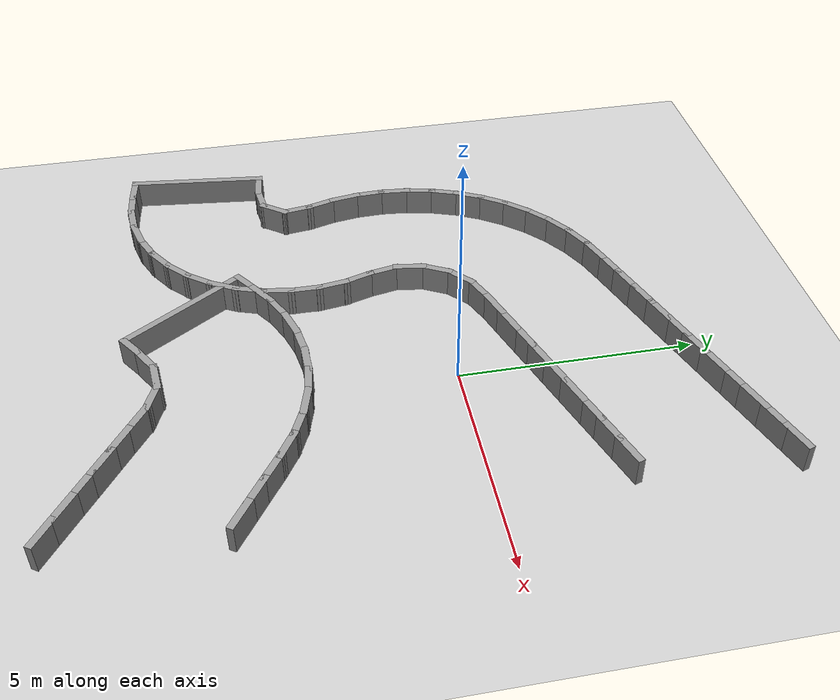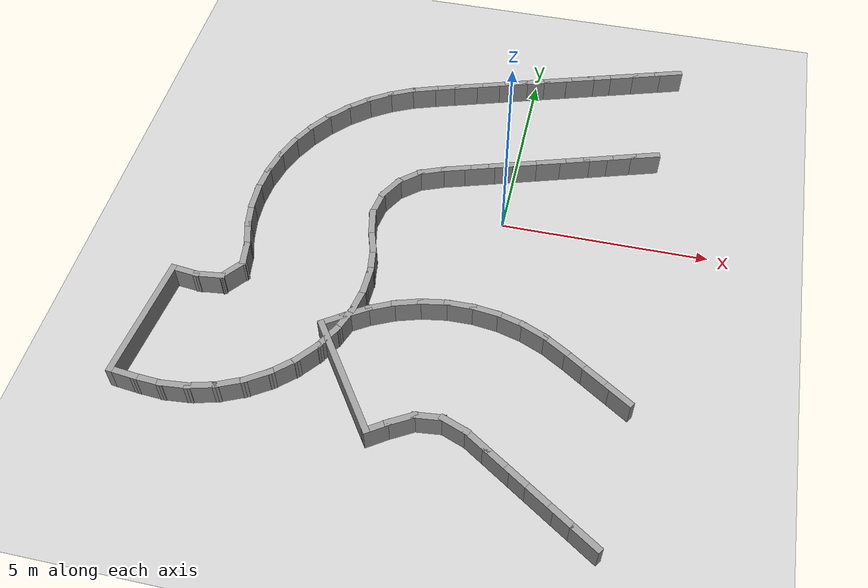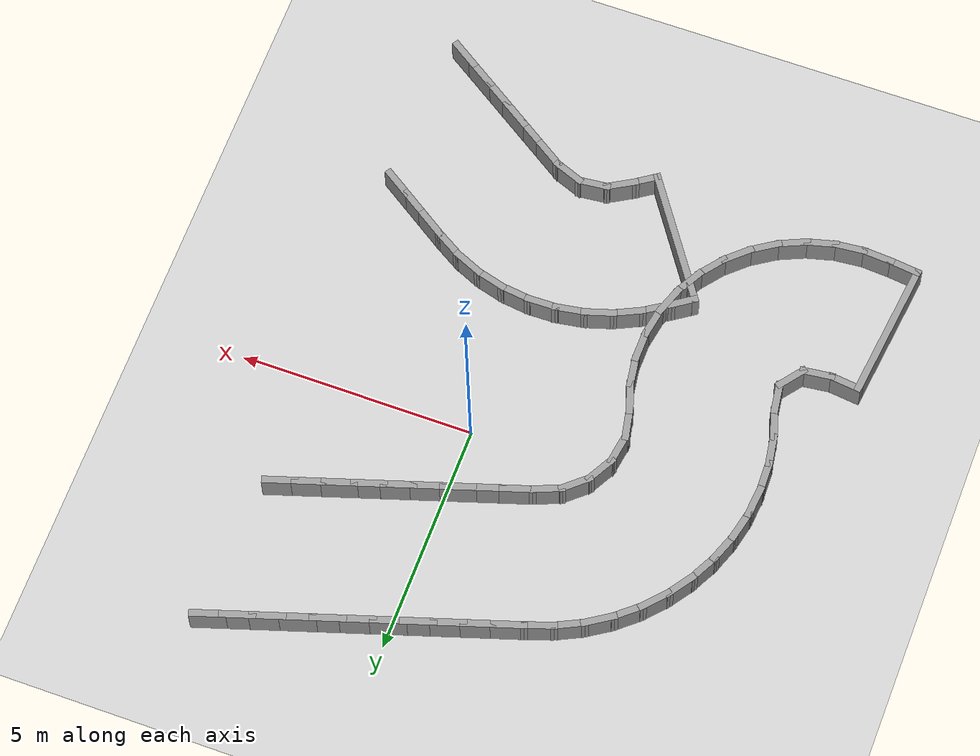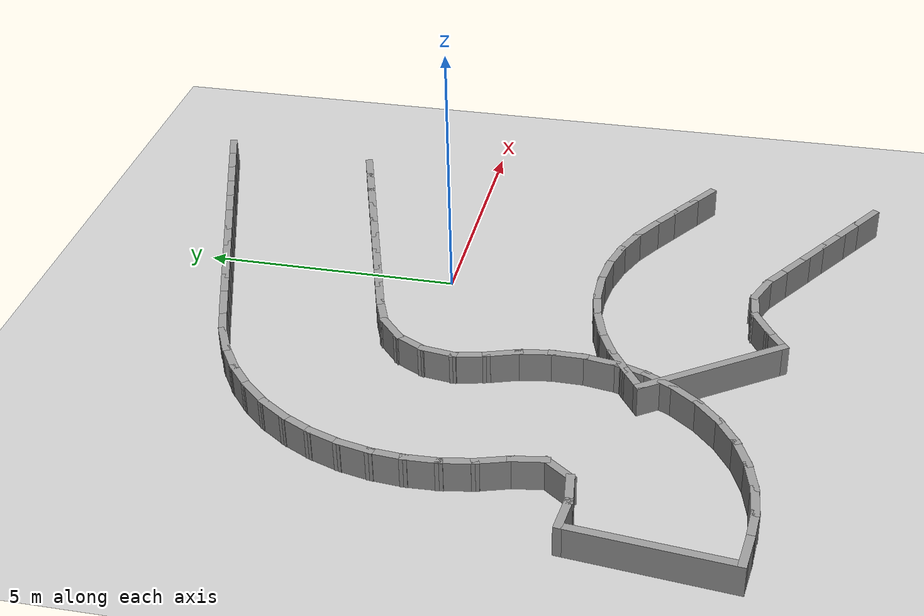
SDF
<sdf version="1.7">
 <world name="default">
  <model name="ground_plane">
   <static>1</static>
   <link name="link">
    <collision name="collision">
     <geometry><plane><normal>0 0 1</normal><size>100 100</size></plane></geometry>
     <surface><friction><ode><mu>100</mu><mu2>50</mu2></ode></friction></surface>
    </collision>
    <visual name="visual">
     <cast_shadows>0</cast_shadows>
     <geometry><plane><normal>0 0 1</normal><size>100 100</size></plane></geometry>
     <material>
      <script><uri>file://media/materials/scripts/gazebo.material</uri><name>Gazebo/Grey</name></script>
     </material>
    </visual>
   </link>
  </model>
  <model name="rand_turn_12">
   <link name="Wall_0">
    <collision name="Wall_0_Collision">
     <geometry><box><size>0.7500 0.1500 0.6000</size></box></geometry>
     <pose>0 0 0.3000 0 -0 0</pose>
    </collision>
    <visual name="Wall_0_Visual">
     <pose>0 0 0.3000 0 -0 0</pose>
     <geometry><box><size>0.7500 0.1500 0.6000</size></box></geometry>
     <material>
      <script><uri>file://media/materials/scripts/gazebo.material</uri><name>Gazebo/Grey</name></script>
      <ambient>1 1 1 1</ambient>
     </material>
    </visual>
    <pose>-6.8772 -3.4257 0 0 -0 -0.11106</pose>
   </link>
   <link name="Wall_1">
    <collision name="Wall_1_Collision">
     <geometry><box><size>0.7374 0.1500 0.6000</size></box></geometry>
     <pose>0 0 0.3000 0 -0 0</pose>
    </collision>
    <visual name="Wall_1_Visual">
     <pose>0 0 0.3000 0 -0 0</pose>
     <geometry><box><size>0.7374 0.1500 0.6000</size></box></geometry>
     <material>
      <script><uri>file://media/materials/scripts/gazebo.material</uri><name>Gazebo/Grey</name></script>
      <ambient>1 1 1 1</ambient>
     </material>
    </visual>
    <pose>-6.2874 -3.4238 0 0 -0 0.11996</pose>
   </link>
   <link name="Wall_2">
    <collision name="Wall_2_Collision">
     <geometry><box><size>0.7330 0.1500 0.6000</size></box></geometry>
     <pose>0 0 0.3000 0 -0 0</pose>
    </collision>
    <visual name="Wall_2_Visual">
     <pose>0 0 0.3000 0 -0 0</pose>
     <geometry><box><size>0.7330 0.1500 0.6000</size></box></geometry>
     <material>
      <script><uri>file://media/materials/scripts/gazebo.material</uri><name>Gazebo/Grey</name></script>
      <ambient>1 1 1 1</ambient>
     </material>
    </visual>
    <pose>-5.8196 -3.1565 0 0 -0 0.92140</pose>
   </link>
   <link name="Wall_3">
    <collision name="Wall_3_Collision">
     <geometry><box><size>0.7377 0.1500 0.6000</size></box></geometry>
     <pose>0 0 0.3000 0 -0 0</pose>
    </collision>
    <visual name="Wall_3_Visual">
     <pose>0 0 0.3000 0 -0 0</pose>
     <geometry><box><size>0.7377 0.1500 0.6000</size></box></geometry>
     <material>
      <script><uri>file://media/materials/scripts/gazebo.material</uri><name>Gazebo/Grey</name></script>
      <ambient>1 1 1 1</ambient>
     </material>
    </visual>
    <pose>-5.6868 -2.6337 0 0 -0 1.71950</pose>
   </link>
   <link name="Wall_4">
    <collision name="Wall_4_Collision">
     <geometry><box><size>0.7496 0.1500 0.6000</size></box></geometry>
     <pose>0 0 0.3000 0 -0 0</pose>
    </collision>
    <visual name="Wall_4_Visual">
     <pose>0 0 0.3000 0 -0 0</pose>
     <geometry><box><size>0.7496 0.1500 0.6000</size></box></geometry>
     <material>
      <script><uri>file://media/materials/scripts/gazebo.material</uri><name>Gazebo/Grey</name></script>
      <ambient>1 1 1 1</ambient>
     </material>
    </visual>
    <pose>-5.8177 -2.0563 0 0 -0 1.86625</pose>
   </link>
   <link name="Wall_5">
    <collision name="Wall_5_Collision">
     <geometry><box><size>0.7496 0.1500 0.6000</size></box></geometry>
     <pose>0 0 0.3000 0 -0 0</pose>
    </collision>
    <visual name="Wall_5_Visual">
     <pose>0 0 0.3000 0 -0 0</pose>
     <geometry><box><size>0.7496 0.1500 0.6000</size></box></geometry>
     <material>
      <script><uri>file://media/materials/scripts/gazebo.material</uri><name>Gazebo/Grey</name></script>
      <ambient>1 1 1 1</ambient>
     </material>
    </visual>
    <pose>-5.9548 -1.4739 0 0 -0 1.73781</pose>
   </link>
   <link name="Wall_6">
    <collision name="Wall_6_Collision">
     <geometry><box><size>0.7495 0.1500 0.6000</size></box></geometry>
     <pose>0 0 0.3000 0 -0 0</pose>
    </collision>
    <visual name="Wall_6_Visual">
     <pose>0 0 0.3000 0 -0 0</pose>
     <geometry><box><size>0.7495 0.1500 0.6000</size></box></geometry>
     <material>
      <script><uri>file://media/materials/scripts/gazebo.material</uri><name>Gazebo/Grey</name></script>
      <ambient>1 1 1 1</ambient>
     </material>
    </visual>
    <pose>-6.0162 -0.8787 0 0 -0 1.60937</pose>
   </link>
   <link name="Wall_7">
    <collision name="Wall_7_Collision">
     <geometry><box><size>0.7495 0.1500 0.6000</size></box></geometry>
     <pose>0 0 0.3000 0 -0 0</pose>
    </collision>
    <visual name="Wall_7_Visual">
     <pose>0 0 0.3000 0 -0 0</pose>
     <geometry><box><size>0.7495 0.1500 0.6000</size></box></geometry>
     <material>
      <script><uri>file://media/materials/scripts/gazebo.material</uri><name>Gazebo/Grey</name></script>
      <ambient>1 1 1 1</ambient>
     </material>
    </visual>
    <pose>-6.0008 -0.2806 0 0 -0 1.48094</pose>
   </link>
   <link name="Wall_8">
    <collision name="Wall_8_Collision">
     <geometry><box><size>0.7495 0.1500 0.6000</size></box></geometry>
     <pose>0 0 0.3000 0 -0 0</pose>
    </collision>
    <visual name="Wall_8_Visual">
     <pose>0 0 0.3000 0 -0 0</pose>
     <geometry><box><size>0.7495 0.1500 0.6000</size></box></geometry>
     <material>
      <script><uri>file://media/materials/scripts/gazebo.material</uri><name>Gazebo/Grey</name></script>
      <ambient>1 1 1 1</ambient>
     </material>
    </visual>
    <pose>-5.9090 0.3106 0 0 -0 1.35250</pose>
   </link>
   <link name="Wall_9">
    <collision name="Wall_9_Collision">
     <geometry><box><size>0.7496 0.1500 0.6000</size></box></geometry>
     <pose>0 0 0.3000 0 -0 0</pose>
    </collision>
    <visual name="Wall_9_Visual">
     <pose>0 0 0.3000 0 -0 0</pose>
     <geometry><box><size>0.7496 0.1500 0.6000</size></box></geometry>
     <material>
      <script><uri>file://media/materials/scripts/gazebo.material</uri><name>Gazebo/Grey</name></script>
      <ambient>1 1 1 1</ambient>
     </material>
    </visual>
    <pose>-5.7422 0.8852 0 0 -0 1.22406</pose>
   </link>
   <link name="Wall_10">
    <collision name="Wall_10_Collision">
     <geometry><box><size>0.7496 0.1500 0.6000</size></box></geometry>
     <pose>0 0 0.3000 0 -0 0</pose>
    </collision>
    <visual name="Wall_10_Visual">
     <pose>0 0 0.3000 0 -0 0</pose>
     <geometry><box><size>0.7496 0.1500 0.6000</size></box></geometry>
     <material>
      <script><uri>file://media/materials/scripts/gazebo.material</uri><name>Gazebo/Grey</name></script>
      <ambient>1 1 1 1</ambient>
     </material>
    </visual>
    <pose>-5.5032 1.4337 0 0 -0 1.09562</pose>
   </link>
   <link name="Wall_11">
    <collision name="Wall_11_Collision">
     <geometry><box><size>0.7496 0.1500 0.6000</size></box></geometry>
     <pose>0 0 0.3000 0 -0 0</pose>
    </collision>
    <visual name="Wall_11_Visual">
     <pose>0 0 0.3000 0 -0 0</pose>
     <geometry><box><size>0.7496 0.1500 0.6000</size></box></geometry>
     <material>
      <script><uri>file://media/materials/scripts/gazebo.material</uri><name>Gazebo/Grey</name></script>
      <ambient>1 1 1 1</ambient>
     </material>
    </visual>
    <pose>-5.1959 1.9471 0 0 -0 0.96718</pose>
   </link>
   <link name="Wall_12">
    <collision name="Wall_12_Collision">
     <geometry><box><size>0.7496 0.1500 0.6000</size></box></geometry>
     <pose>0 0 0.3000 0 -0 0</pose>
    </collision>
    <visual name="Wall_12_Visual">
     <pose>0 0 0.3000 0 -0 0</pose>
     <geometry><box><size>0.7496 0.1500 0.6000</size></box></geometry>
     <material>
      <script><uri>file://media/materials/scripts/gazebo.material</uri><name>Gazebo/Grey</name></script>
      <ambient>1 1 1 1</ambient>
     </material>
    </visual>
    <pose>-4.8252 2.4168 0 0 -0 0.83822</pose>
   </link>
   <link name="Wall_13">
    <collision name="Wall_13_Collision">
     <geometry><box><size>0.7496 0.1500 0.6000</size></box></geometry>
     <pose>0 0 0.3000 0 -0 0</pose>
    </collision>
    <visual name="Wall_13_Visual">
     <pose>0 0 0.3000 0 -0 0</pose>
     <geometry><box><size>0.7496 0.1500 0.6000</size></box></geometry>
     <material>
      <script><uri>file://media/materials/scripts/gazebo.material</uri><name>Gazebo/Grey</name></script>
      <ambient>1 1 1 1</ambient>
     </material>
    </visual>
    <pose>-4.3973 2.8350 0 0 -0 0.70952</pose>
   </link>
   <link name="Wall_14">
    <collision name="Wall_14_Collision">
     <geometry><box><size>0.7496 0.1500 0.6000</size></box></geometry>
     <pose>0 0 0.3000 0 -0 0</pose>
    </collision>
    <visual name="Wall_14_Visual">
     <pose>0 0 0.3000 0 -0 0</pose>
     <geometry><box><size>0.7496 0.1500 0.6000</size></box></geometry>
     <material>
      <script><uri>file://media/materials/scripts/gazebo.material</uri><name>Gazebo/Grey</name></script>
      <ambient>1 1 1 1</ambient>
     </material>
    </visual>
    <pose>-3.9192 3.1948 0 0 -0 0.58108</pose>
   </link>
   <link name="Wall_15">
    <collision name="Wall_15_Collision">
     <geometry><box><size>0.7495 0.1500 0.6000</size></box></geometry>
     <pose>0 0 0.3000 0 -0 0</pose>
    </collision>
    <visual name="Wall_15_Visual">
     <pose>0 0 0.3000 0 -0 0</pose>
     <geometry><box><size>0.7495 0.1500 0.6000</size></box></geometry>
     <material>
      <script><uri>file://media/materials/scripts/gazebo.material</uri><name>Gazebo/Grey</name></script>
      <ambient>1 1 1 1</ambient>
     </material>
    </visual>
    <pose>-3.3991 3.4905 0 0 -0 0.45264</pose>
   </link>
   <link name="Wall_16">
    <collision name="Wall_16_Collision">
     <geometry><box><size>0.7498 0.1500 0.6000</size></box></geometry>
     <pose>0 0 0.3000 0 -0 0</pose>
    </collision>
    <visual name="Wall_16_Visual">
     <pose>0 0 0.3000 0 -0 0</pose>
     <geometry><box><size>0.7498 0.1500 0.6000</size></box></geometry>
     <material>
      <script><uri>file://media/materials/scripts/gazebo.material</uri><name>Gazebo/Grey</name></script>
      <ambient>1 1 1 1</ambient>
     </material>
    </visual>
    <pose>-2.8460 3.7194 0 0 -0 0.33208</pose>
   </link>
   <link name="Wall_17">
    <collision name="Wall_17_Collision">
     <geometry><box><size>0.7500 0.1500 0.6000</size></box></geometry>
     <pose>0 0 0.3000 0 -0 0</pose>
    </collision>
    <visual name="Wall_17_Visual">
     <pose>0 0 0.3000 0 -0 0</pose>
     <geometry><box><size>0.7500 0.1500 0.6000</size></box></geometry>
     <material>
      <script><uri>file://media/materials/scripts/gazebo.material</uri><name>Gazebo/Grey</name></script>
      <ambient>1 1 1 1</ambient>
     </material>
    </visual>
    <pose>-2.2767 3.9083 0 0 -0 0.30859</pose>
   </link>
   <link name="Wall_18">
    <collision name="Wall_18_Collision">
     <geometry><box><size>0.7500 0.1500 0.6000</size></box></geometry>
     <pose>0 0 0.3000 0 -0 0</pose>
    </collision>
    <visual name="Wall_18_Visual">
     <pose>0 0 0.3000 0 -0 0</pose>
     <geometry><box><size>0.7500 0.1500 0.6000</size></box></geometry>
     <material>
      <script><uri>file://media/materials/scripts/gazebo.material</uri><name>Gazebo/Grey</name></script>
      <ambient>1 1 1 1</ambient>
     </material>
    </visual>
    <pose>-1.7050 4.0905 0 0 -0 0.30859</pose>
   </link>
   <link name="Wall_19">
    <collision name="Wall_19_Collision">
     <geometry><box><size>0.7500 0.1500 0.6000</size></box></geometry>
     <pose>0 0 0.3000 0 -0 0</pose>
    </collision>
    <visual name="Wall_19_Visual">
     <pose>0 0 0.3000 0 -0 0</pose>
     <geometry><box><size>0.7500 0.1500 0.6000</size></box></geometry>
     <material>
      <script><uri>file://media/materials/scripts/gazebo.material</uri><name>Gazebo/Grey</name></script>
      <ambient>1 1 1 1</ambient>
     </material>
    </visual>
    <pose>-1.1334 4.2727 0 0 -0 0.30859</pose>
   </link>
   <link name="Wall_20">
    <collision name="Wall_20_Collision">
     <geometry><box><size>0.7500 0.1500 0.6000</size></box></geometry>
     <pose>0 0 0.3000 0 -0 0</pose>
    </collision>
    <visual name="Wall_20_Visual">
     <pose>0 0 0.3000 0 -0 0</pose>
     <geometry><box><size>0.7500 0.1500 0.6000</size></box></geometry>
     <material>
      <script><uri>file://media/materials/scripts/gazebo.material</uri><name>Gazebo/Grey</name></script>
      <ambient>1 1 1 1</ambient>
     </material>
    </visual>
    <pose>-0.5617 4.4549 0 0 -0 0.30859</pose>
   </link>
   <link name="Wall_21">
    <collision name="Wall_21_Collision">
     <geometry><box><size>0.7500 0.1500 0.6000</size></box></geometry>
     <pose>0 0 0.3000 0 -0 0</pose>
    </collision>
    <visual name="Wall_21_Visual">
     <pose>0 0 0.3000 0 -0 0</pose>
     <geometry><box><size>0.7500 0.1500 0.6000</size></box></geometry>
     <material>
      <script><uri>file://media/materials/scripts/gazebo.material</uri><name>Gazebo/Grey</name></script>
      <ambient>1 1 1 1</ambient>
     </material>
    </visual>
    <pose>0.0099 4.6372 0 0 -0 0.30859</pose>
   </link>
   <link name="Wall_22">
    <collision name="Wall_22_Collision">
     <geometry><box><size>0.7500 0.1500 0.6000</size></box></geometry>
     <pose>0 0 0.3000 0 -0 0</pose>
    </collision>
    <visual name="Wall_22_Visual">
     <pose>0 0 0.3000 0 -0 0</pose>
     <geometry><box><size>0.7500 0.1500 0.6000</size></box></geometry>
     <material>
      <script><uri>file://media/materials/scripts/gazebo.material</uri><name>Gazebo/Grey</name></script>
      <ambient>1 1 1 1</ambient>
     </material>
    </visual>
    <pose>0.5816 4.8194 0 0 -0 0.30859</pose>
   </link>
   <link name="Wall_23">
    <collision name="Wall_23_Collision">
     <geometry><box><size>0.7500 0.1500 0.6000</size></box></geometry>
     <pose>0 0 0.3000 0 -0 0</pose>
    </collision>
    <visual name="Wall_23_Visual">
     <pose>0 0 0.3000 0 -0 0</pose>
     <geometry><box><size>0.7500 0.1500 0.6000</size></box></geometry>
     <material>
      <script><uri>file://media/materials/scripts/gazebo.material</uri><name>Gazebo/Grey</name></script>
      <ambient>1 1 1 1</ambient>
     </material>
    </visual>
    <pose>1.1533 5.0016 0 0 -0 0.30859</pose>
   </link>
   <link name="Wall_24">
    <collision name="Wall_24_Collision">
     <geometry><box><size>0.7500 0.1500 0.6000</size></box></geometry>
     <pose>0 0 0.3000 0 -0 0</pose>
    </collision>
    <visual name="Wall_24_Visual">
     <pose>0 0 0.3000 0 -0 0</pose>
     <geometry><box><size>0.7500 0.1500 0.6000</size></box></geometry>
     <material>
      <script><uri>file://media/materials/scripts/gazebo.material</uri><name>Gazebo/Grey</name></script>
      <ambient>1 1 1 1</ambient>
     </material>
    </visual>
    <pose>1.7249 5.1839 0 0 -0 0.30859</pose>
   </link>
   <link name="Wall_25">
    <collision name="Wall_25_Collision">
     <geometry><box><size>0.7500 0.1500 0.6000</size></box></geometry>
     <pose>0 0 0.3000 0 -0 0</pose>
    </collision>
    <visual name="Wall_25_Visual">
     <pose>0 0 0.3000 0 -0 0</pose>
     <geometry><box><size>0.7500 0.1500 0.6000</size></box></geometry>
     <material>
      <script><uri>file://media/materials/scripts/gazebo.material</uri><name>Gazebo/Grey</name></script>
      <ambient>1 1 1 1</ambient>
     </material>
    </visual>
    <pose>2.2966 5.3661 0 0 -0 0.30859</pose>
   </link>
   <link name="Wall_26">
    <collision name="Wall_26_Collision">
     <geometry><box><size>0.7500 0.1500 0.6000</size></box></geometry>
     <pose>0 0 0.3000 0 -0 0</pose>
    </collision>
    <visual name="Wall_26_Visual">
     <pose>0 0 0.3000 0 -0 0</pose>
     <geometry><box><size>0.7500 0.1500 0.6000</size></box></geometry>
     <material>
      <script><uri>file://media/materials/scripts/gazebo.material</uri><name>Gazebo/Grey</name></script>
      <ambient>1 1 1 1</ambient>
     </material>
    </visual>
    <pose>2.8682 5.5483 0 0 -0 0.30859</pose>
   </link>
   <link name="Wall_27">
    <collision name="Wall_27_Collision">
     <geometry><box><size>0.7500 0.1500 0.6000</size></box></geometry>
     <pose>0 0 0.3000 0 -0 0</pose>
    </collision>
    <visual name="Wall_27_Visual">
     <pose>0 0 0.3000 0 -0 0</pose>
     <geometry><box><size>0.7500 0.1500 0.6000</size></box></geometry>
     <material>
      <script><uri>file://media/materials/scripts/gazebo.material</uri><name>Gazebo/Grey</name></script>
      <ambient>1 1 1 1</ambient>
     </material>
    </visual>
    <pose>3.4399 5.7306 0 0 -0 0.30859</pose>
   </link>
   <link name="Wall_76">
    <collision name="Wall_76_Collision">
     <geometry><box><size>0.7500 0.1500 0.6000</size></box></geometry>
     <pose>0 0 0.3000 0 -0 0</pose>
    </collision>
    <visual name="Wall_76_Visual">
     <pose>0 0 0.3000 0 -0 0</pose>
     <geometry><box><size>0.7500 0.1500 0.6000</size></box></geometry>
     <material>
      <script><uri>file://media/materials/scripts/gazebo.material</uri><name>Gazebo/Grey</name></script>
      <ambient>1 1 1 1</ambient>
     </material>
    </visual>
    <pose>3.1149 -8.0016 0 0 -0 2.55933</pose>
   </link>
   <link name="Wall_77">
    <collision name="Wall_77_Collision">
     <geometry><box><size>0.7500 0.1500 0.6000</size></box></geometry>
     <pose>0 0 0.3000 0 -0 0</pose>
    </collision>
    <visual name="Wall_77_Visual">
     <pose>0 0 0.3000 0 -0 0</pose>
     <geometry><box><size>0.7500 0.1500 0.6000</size></box></geometry>
     <material>
      <script><uri>file://media/materials/scripts/gazebo.material</uri><name>Gazebo/Grey</name></script>
      <ambient>1 1 1 1</ambient>
     </material>
    </visual>
    <pose>2.6137 -7.6716 0 0 -0 2.55933</pose>
   </link>
   <link name="Wall_78">
    <collision name="Wall_78_Collision">
     <geometry><box><size>0.7500 0.1500 0.6000</size></box></geometry>
     <pose>0 0 0.3000 0 -0 0</pose>
    </collision>
    <visual name="Wall_78_Visual">
     <pose>0 0 0.3000 0 -0 0</pose>
     <geometry><box><size>0.7500 0.1500 0.6000</size></box></geometry>
     <material>
      <script><uri>file://media/materials/scripts/gazebo.material</uri><name>Gazebo/Grey</name></script>
      <ambient>1 1 1 1</ambient>
     </material>
    </visual>
    <pose>2.1126 -7.3417 0 0 -0 2.55933</pose>
   </link>
   <link name="Wall_79">
    <collision name="Wall_79_Collision">
     <geometry><box><size>0.7500 0.1500 0.6000</size></box></geometry>
     <pose>0 0 0.3000 0 -0 0</pose>
    </collision>
    <visual name="Wall_79_Visual">
     <pose>0 0 0.3000 0 -0 0</pose>
     <geometry><box><size>0.7500 0.1500 0.6000</size></box></geometry>
     <material>
      <script><uri>file://media/materials/scripts/gazebo.material</uri><name>Gazebo/Grey</name></script>
      <ambient>1 1 1 1</ambient>
     </material>
    </visual>
    <pose>1.6115 -7.0117 0 0 -0 2.55933</pose>
   </link>
   <link name="Wall_80">
    <collision name="Wall_80_Collision">
     <geometry><box><size>0.7500 0.1500 0.6000</size></box></geometry>
     <pose>0 0 0.3000 0 -0 0</pose>
    </collision>
    <visual name="Wall_80_Visual">
     <pose>0 0 0.3000 0 -0 0</pose>
     <geometry><box><size>0.7500 0.1500 0.6000</size></box></geometry>
     <material>
      <script><uri>file://media/materials/scripts/gazebo.material</uri><name>Gazebo/Grey</name></script>
      <ambient>1 1 1 1</ambient>
     </material>
    </visual>
    <pose>1.1103 -6.6818 0 0 -0 2.55933</pose>
   </link>
   <link name="Wall_81">
    <collision name="Wall_81_Collision">
     <geometry><box><size>0.7500 0.1500 0.6000</size></box></geometry>
     <pose>0 0 0.3000 0 -0 0</pose>
    </collision>
    <visual name="Wall_81_Visual">
     <pose>0 0 0.3000 0 -0 0</pose>
     <geometry><box><size>0.7500 0.1500 0.6000</size></box></geometry>
     <material>
      <script><uri>file://media/materials/scripts/gazebo.material</uri><name>Gazebo/Grey</name></script>
      <ambient>1 1 1 1</ambient>
     </material>
    </visual>
    <pose>0.6092 -6.3518 0 0 -0 2.55925</pose>
   </link>
   <link name="Wall_82">
    <collision name="Wall_82_Collision">
     <geometry><box><size>0.7445 0.1500 0.6000</size></box></geometry>
     <pose>0 0 0.3000 0 -0 0</pose>
    </collision>
    <visual name="Wall_82_Visual">
     <pose>0 0 0.3000 0 -0 0</pose>
     <geometry><box><size>0.7445 0.1500 0.6000</size></box></geometry>
     <material>
      <script><uri>file://media/materials/scripts/gazebo.material</uri><name>Gazebo/Grey</name></script>
      <ambient>1 1 1 1</ambient>
     </material>
    </visual>
    <pose>0.0815 -6.0794 0 0 -0 2.77176</pose>
   </link>
   <link name="Wall_83">
    <collision name="Wall_83_Collision">
     <geometry><box><size>0.7444 0.1500 0.6000</size></box></geometry>
     <pose>0 0 0.3000 0 -0 0</pose>
    </collision>
    <visual name="Wall_83_Visual">
     <pose>0 0 0.3000 0 -0 0</pose>
     <geometry><box><size>0.7444 0.1500 0.6000</size></box></geometry>
     <material>
      <script><uri>file://media/materials/scripts/gazebo.material</uri><name>Gazebo/Grey</name></script>
      <ambient>1 1 1 1</ambient>
     </material>
    </visual>
    <pose>-0.4913 -6.0021 0 0 -0 -3.03975</pose>
   </link>
   <link name="Wall_84">
    <collision name="Wall_84_Collision">
     <geometry><box><size>0.7477 0.1500 0.6000</size></box></geometry>
     <pose>0 0 0.3000 0 -0 0</pose>
    </collision>
    <visual name="Wall_84_Visual">
     <pose>0 0 0.3000 0 -0 0</pose>
     <geometry><box><size>0.7477 0.1500 0.6000</size></box></geometry>
     <material>
      <script><uri>file://media/materials/scripts/gazebo.material</uri><name>Gazebo/Grey</name></script>
      <ambient>1 1 1 1</ambient>
     </material>
    </visual>
    <pose>-1.0450 -6.1831 0 0 -0 -2.61285</pose>
   </link>
   <link name="Wall_85">
    <collision name="Wall_85_Collision">
     <geometry><box><size>0.6342 0.1500 0.6000</size></box></geometry>
     <pose>0 0 0.3000 0 -0 0</pose>
    </collision>
    <visual name="Wall_85_Visual">
     <pose>0 0 0.3000 0 -0 0</pose>
     <geometry><box><size>0.6342 0.1500 0.6000</size></box></geometry>
     <material>
      <script><uri>file://media/materials/scripts/gazebo.material</uri><name>Gazebo/Grey</name></script>
      <ambient>1 1 1 1</ambient>
     </material>
    </visual>
    <pose>-1.5027 -6.4709 0 0 -0 -2.54009</pose>
   </link>
   <link name="Wall_86">
    <collision name="Wall_86_Collision">
     <geometry><box><size>0.7500 0.1500 0.6000</size></box></geometry>
     <pose>0 0 0.3000 0 -0 0</pose>
    </collision>
    <visual name="Wall_86_Visual">
     <pose>0 0 0.3000 0 -0 0</pose>
     <geometry><box><size>0.7500 0.1500 0.6000</size></box></geometry>
     <material>
      <script><uri>file://media/materials/scripts/gazebo.material</uri><name>Gazebo/Grey</name></script>
      <ambient>1 1 1 1</ambient>
     </material>
    </visual>
    <pose>-7.2043 -6.3597 0 0 -0 -0.11106</pose>
   </link>
   <link name="Wall_87">
    <collision name="Wall_87_Collision">
     <geometry><box><size>0.7495 0.1500 0.6000</size></box></geometry>
     <pose>0 0 0.3000 0 -0 0</pose>
    </collision>
    <visual name="Wall_87_Visual">
     <pose>0 0 0.3000 0 -0 0</pose>
     <geometry><box><size>0.7495 0.1500 0.6000</size></box></geometry>
     <material>
      <script><uri>file://media/materials/scripts/gazebo.material</uri><name>Gazebo/Grey</name></script>
      <ambient>1 1 1 1</ambient>
     </material>
    </visual>
    <pose>-6.6071 -6.4125 0 0 -0 -0.06514</pose>
   </link>
   <link name="Wall_88">
    <collision name="Wall_88_Collision">
     <geometry><box><size>0.7493 0.1500 0.6000</size></box></geometry>
     <pose>0 0 0.3000 0 -0 0</pose>
    </collision>
    <visual name="Wall_88_Visual">
     <pose>0 0 0.3000 0 -0 0</pose>
     <geometry><box><size>0.7493 0.1500 0.6000</size></box></geometry>
     <material>
      <script><uri>file://media/materials/scripts/gazebo.material</uri><name>Gazebo/Grey</name></script>
      <ambient>1 1 1 1</ambient>
     </material>
    </visual>
    <pose>-6.0096 -6.4042 0 0 -0 0.09290</pose>
   </link>
   <link name="Wall_89">
    <collision name="Wall_89_Collision">
     <geometry><box><size>0.7493 0.1500 0.6000</size></box></geometry>
     <pose>0 0 0.3000 0 -0 0</pose>
    </collision>
    <visual name="Wall_89_Visual">
     <pose>0 0 0.3000 0 -0 0</pose>
     <geometry><box><size>0.7493 0.1500 0.6000</size></box></geometry>
     <material>
      <script><uri>file://media/materials/scripts/gazebo.material</uri><name>Gazebo/Grey</name></script>
      <ambient>1 1 1 1</ambient>
     </material>
    </visual>
    <pose>-5.4214 -6.3004 0 0 -0 0.25638</pose>
   </link>
   <link name="Wall_90">
    <collision name="Wall_90_Collision">
     <geometry><box><size>0.7493 0.1500 0.6000</size></box></geometry>
     <pose>0 0 0.3000 0 -0 0</pose>
    </collision>
    <visual name="Wall_90_Visual">
     <pose>0 0 0.3000 0 -0 0</pose>
     <geometry><box><size>0.7493 0.1500 0.6000</size></box></geometry>
     <material>
      <script><uri>file://media/materials/scripts/gazebo.material</uri><name>Gazebo/Grey</name></script>
      <ambient>1 1 1 1</ambient>
     </material>
    </visual>
    <pose>-4.8577 -6.1029 0 0 -0 0.41774</pose>
   </link>
   <link name="Wall_91">
    <collision name="Wall_91_Collision">
     <geometry><box><size>0.7493 0.1500 0.6000</size></box></geometry>
     <pose>0 0 0.3000 0 -0 0</pose>
    </collision>
    <visual name="Wall_91_Visual">
     <pose>0 0 0.3000 0 -0 0</pose>
     <geometry><box><size>0.7493 0.1500 0.6000</size></box></geometry>
     <material>
      <script><uri>file://media/materials/scripts/gazebo.material</uri><name>Gazebo/Grey</name></script>
      <ambient>1 1 1 1</ambient>
     </material>
    </visual>
    <pose>-4.3338 -5.8162 0 0 -0 0.58355</pose>
   </link>
   <link name="Wall_92">
    <collision name="Wall_92_Collision">
     <geometry><box><size>0.7493 0.1500 0.6000</size></box></geometry>
     <pose>0 0 0.3000 0 -0 0</pose>
    </collision>
    <visual name="Wall_92_Visual">
     <pose>0 0 0.3000 0 -0 0</pose>
     <geometry><box><size>0.7493 0.1500 0.6000</size></box></geometry>
     <material>
      <script><uri>file://media/materials/scripts/gazebo.material</uri><name>Gazebo/Grey</name></script>
      <ambient>1 1 1 1</ambient>
     </material>
    </visual>
    <pose>-3.8634 -5.4481 0 0 -0 0.74457</pose>
   </link>
   <link name="Wall_93">
    <collision name="Wall_93_Collision">
     <geometry><box><size>0.7493 0.1500 0.6000</size></box></geometry>
     <pose>0 0 0.3000 0 -0 0</pose>
    </collision>
    <visual name="Wall_93_Visual">
     <pose>0 0 0.3000 0 -0 0</pose>
     <geometry><box><size>0.7493 0.1500 0.6000</size></box></geometry>
     <material>
      <script><uri>file://media/materials/scripts/gazebo.material</uri><name>Gazebo/Grey</name></script>
      <ambient>1 1 1 1</ambient>
     </material>
    </visual>
    <pose>-3.4588 -5.0087 0 0 -0 0.90873</pose>
   </link>
   <link name="Wall_94">
    <collision name="Wall_94_Collision">
     <geometry><box><size>0.7492 0.1500 0.6000</size></box></geometry>
     <pose>0 0 0.3000 0 -0 0</pose>
    </collision>
    <visual name="Wall_94_Visual">
     <pose>0 0 0.3000 0 -0 0</pose>
     <geometry><box><size>0.7492 0.1500 0.6000</size></box></geometry>
     <material>
      <script><uri>file://media/materials/scripts/gazebo.material</uri><name>Gazebo/Grey</name></script>
      <ambient>1 1 1 1</ambient>
     </material>
    </visual>
    <pose>-3.1312 -4.5093 0 0 -0 1.07175</pose>
   </link>
   <link name="Wall_95">
    <collision name="Wall_95_Collision">
     <geometry><box><size>0.7493 0.1500 0.6000</size></box></geometry>
     <pose>0 0 0.3000 0 -0 0</pose>
    </collision>
    <visual name="Wall_95_Visual">
     <pose>0 0 0.3000 0 -0 0</pose>
     <geometry><box><size>0.7493 0.1500 0.6000</size></box></geometry>
     <material>
      <script><uri>file://media/materials/scripts/gazebo.material</uri><name>Gazebo/Grey</name></script>
      <ambient>1 1 1 1</ambient>
     </material>
    </visual>
    <pose>-2.8887 -3.9634 0 0 -0 1.23356</pose>
   </link>
   <link name="Wall_96">
    <collision name="Wall_96_Collision">
     <geometry><box><size>0.7493 0.1500 0.6000</size></box></geometry>
     <pose>0 0 0.3000 0 -0 0</pose>
    </collision>
    <visual name="Wall_96_Visual">
     <pose>0 0 0.3000 0 -0 0</pose>
     <geometry><box><size>0.7493 0.1500 0.6000</size></box></geometry>
     <material>
      <script><uri>file://media/materials/scripts/gazebo.material</uri><name>Gazebo/Grey</name></script>
      <ambient>1 1 1 1</ambient>
     </material>
    </visual>
    <pose>-2.7383 -3.3854 0 0 -0 1.39893</pose>
   </link>
   <link name="Wall_97">
    <collision name="Wall_97_Collision">
     <geometry><box><size>0.7493 0.1500 0.6000</size></box></geometry>
     <pose>0 0 0.3000 0 -0 0</pose>
    </collision>
    <visual name="Wall_97_Visual">
     <pose>0 0 0.3000 0 -0 0</pose>
     <geometry><box><size>0.7493 0.1500 0.6000</size></box></geometry>
     <material>
      <script><uri>file://media/materials/scripts/gazebo.material</uri><name>Gazebo/Grey</name></script>
      <ambient>1 1 1 1</ambient>
     </material>
    </visual>
    <pose>-2.6838 -2.7905 0 0 -0 1.55995</pose>
   </link>
   <link name="Wall_98">
    <collision name="Wall_98_Collision">
     <geometry><box><size>0.7493 0.1500 0.6000</size></box></geometry>
     <pose>0 0 0.3000 0 -0 0</pose>
    </collision>
    <visual name="Wall_98_Visual">
     <pose>0 0 0.3000 0 -0 0</pose>
     <geometry><box><size>0.7493 0.1500 0.6000</size></box></geometry>
     <material>
      <script><uri>file://media/materials/scripts/gazebo.material</uri><name>Gazebo/Grey</name></script>
      <ambient>1 1 1 1</ambient>
     </material>
    </visual>
    <pose>-2.7264 -2.1948 0 0 -0 1.72456</pose>
   </link>
   <link name="Wall_99">
    <collision name="Wall_99_Collision">
     <geometry><box><size>0.7493 0.1500 0.6000</size></box></geometry>
     <pose>0 0 0.3000 0 -0 0</pose>
    </collision>
    <visual name="Wall_99_Visual">
     <pose>0 0 0.3000 0 -0 0</pose>
     <geometry><box><size>0.7493 0.1500 0.6000</size></box></geometry>
     <material>
      <script><uri>file://media/materials/scripts/gazebo.material</uri><name>Gazebo/Grey</name></script>
      <ambient>1 1 1 1</ambient>
     </material>
    </visual>
    <pose>-2.8650 -1.6137 0 0 -0 1.88510</pose>
   </link>
   <link name="Wall_100">
    <collision name="Wall_100_Collision">
     <geometry><box><size>0.7469 0.1500 0.6000</size></box></geometry>
     <pose>0 0 0.3000 0 -0 0</pose>
    </collision>
    <visual name="Wall_100_Visual">
     <pose>0 0 0.3000 0 -0 0</pose>
     <geometry><box><size>0.7469 0.1500 0.6000</size></box></geometry>
     <material>
      <script><uri>file://media/materials/scripts/gazebo.material</uri><name>Gazebo/Grey</name></script>
      <ambient>1 1 1 1</ambient>
     </material>
    </visual>
    <pose>-3.0173 -1.0363 0 0 -0 1.77202</pose>
   </link>
   <link name="Wall_101">
    <collision name="Wall_101_Collision">
     <geometry><box><size>0.7469 0.1500 0.6000</size></box></geometry>
     <pose>0 0 0.3000 0 -0 0</pose>
    </collision>
    <visual name="Wall_101_Visual">
     <pose>0 0 0.3000 0 -0 0</pose>
     <geometry><box><size>0.7469 0.1500 0.6000</size></box></geometry>
     <material>
      <script><uri>file://media/materials/scripts/gazebo.material</uri><name>Gazebo/Grey</name></script>
      <ambient>1 1 1 1</ambient>
     </material>
    </visual>
    <pose>-3.0328 -0.4486 0 0 -0 1.42250</pose>
   </link>
   <link name="Wall_102">
    <collision name="Wall_102_Collision">
     <geometry><box><size>0.7470 0.1500 0.6000</size></box></geometry>
     <pose>0 0 0.3000 0 -0 0</pose>
    </collision>
    <visual name="Wall_102_Visual">
     <pose>0 0 0.3000 0 -0 0</pose>
     <geometry><box><size>0.7470 0.1500 0.6000</size></box></geometry>
     <material>
      <script><uri>file://media/materials/scripts/gazebo.material</uri><name>Gazebo/Grey</name></script>
      <ambient>1 1 1 1</ambient>
     </material>
    </visual>
    <pose>-2.8461 0.1088 0 0 -0 1.07271</pose>
   </link>
   <link name="Wall_103">
    <collision name="Wall_103_Collision">
     <geometry><box><size>0.7469 0.1500 0.6000</size></box></geometry>
     <pose>0 0 0.3000 0 -0 0</pose>
    </collision>
    <visual name="Wall_103_Visual">
     <pose>0 0 0.3000 0 -0 0</pose>
     <geometry><box><size>0.7469 0.1500 0.6000</size></box></geometry>
     <material>
      <script><uri>file://media/materials/scripts/gazebo.material</uri><name>Gazebo/Grey</name></script>
      <ambient>1 1 1 1</ambient>
     </material>
    </visual>
    <pose>-2.4797 0.5685 0 0 -0 0.72310</pose>
   </link>
   <link name="Wall_104">
    <collision name="Wall_104_Collision">
     <geometry><box><size>0.7480 0.1500 0.6000</size></box></geometry>
     <pose>0 0 0.3000 0 -0 0</pose>
    </collision>
    <visual name="Wall_104_Visual">
     <pose>0 0 0.3000 0 -0 0</pose>
     <geometry><box><size>0.7480 0.1500 0.6000</size></box></geometry>
     <material>
      <script><uri>file://media/materials/scripts/gazebo.material</uri><name>Gazebo/Grey</name></script>
      <ambient>1 1 1 1</ambient>
     </material>
    </visual>
    <pose>-1.9793 0.8793 0 0 -0 0.38887</pose>
   </link>
   <link name="Wall_105">
    <collision name="Wall_105_Collision">
     <geometry><box><size>0.7500 0.1500 0.6000</size></box></geometry>
     <pose>0 0 0.3000 0 -0 0</pose>
    </collision>
    <visual name="Wall_105_Visual">
     <pose>0 0 0.3000 0 -0 0</pose>
     <geometry><box><size>0.7500 0.1500 0.6000</size></box></geometry>
     <material>
      <script><uri>file://media/materials/scripts/gazebo.material</uri><name>Gazebo/Grey</name></script>
      <ambient>1 1 1 1</ambient>
     </material>
    </visual>
    <pose>-1.4168 1.0838 0 0 -0 0.30859</pose>
   </link>
   <link name="Wall_106">
    <collision name="Wall_106_Collision">
     <geometry><box><size>0.7500 0.1500 0.6000</size></box></geometry>
     <pose>0 0 0.3000 0 -0 0</pose>
    </collision>
    <visual name="Wall_106_Visual">
     <pose>0 0 0.3000 0 -0 0</pose>
     <geometry><box><size>0.7500 0.1500 0.6000</size></box></geometry>
     <material>
      <script><uri>file://media/materials/scripts/gazebo.material</uri><name>Gazebo/Grey</name></script>
      <ambient>1 1 1 1</ambient>
     </material>
    </visual>
    <pose>-0.8451 1.2660 0 0 -0 0.30859</pose>
   </link>
   <link name="Wall_107">
    <collision name="Wall_107_Collision">
     <geometry><box><size>0.7500 0.1500 0.6000</size></box></geometry>
     <pose>0 0 0.3000 0 -0 0</pose>
    </collision>
    <visual name="Wall_107_Visual">
     <pose>0 0 0.3000 0 -0 0</pose>
     <geometry><box><size>0.7500 0.1500 0.6000</size></box></geometry>
     <material>
      <script><uri>file://media/materials/scripts/gazebo.material</uri><name>Gazebo/Grey</name></script>
      <ambient>1 1 1 1</ambient>
     </material>
    </visual>
    <pose>-0.2735 1.4483 0 0 -0 0.30859</pose>
   </link>
   <link name="Wall_108">
    <collision name="Wall_108_Collision">
     <geometry><box><size>0.7500 0.1500 0.6000</size></box></geometry>
     <pose>0 0 0.3000 0 -0 0</pose>
    </collision>
    <visual name="Wall_108_Visual">
     <pose>0 0 0.3000 0 -0 0</pose>
     <geometry><box><size>0.7500 0.1500 0.6000</size></box></geometry>
     <material>
      <script><uri>file://media/materials/scripts/gazebo.material</uri><name>Gazebo/Grey</name></script>
      <ambient>1 1 1 1</ambient>
     </material>
    </visual>
    <pose>0.2982 1.6305 0 0 -0 0.30859</pose>
   </link>
   <link name="Wall_109">
    <collision name="Wall_109_Collision">
     <geometry><box><size>0.7500 0.1500 0.6000</size></box></geometry>
     <pose>0 0 0.3000 0 -0 0</pose>
    </collision>
    <visual name="Wall_109_Visual">
     <pose>0 0 0.3000 0 -0 0</pose>
     <geometry><box><size>0.7500 0.1500 0.6000</size></box></geometry>
     <material>
      <script><uri>file://media/materials/scripts/gazebo.material</uri><name>Gazebo/Grey</name></script>
      <ambient>1 1 1 1</ambient>
     </material>
    </visual>
    <pose>0.8698 1.8127 0 0 -0 0.30859</pose>
   </link>
   <link name="Wall_110">
    <collision name="Wall_110_Collision">
     <geometry><box><size>0.7500 0.1500 0.6000</size></box></geometry>
     <pose>0 0 0.3000 0 -0 0</pose>
    </collision>
    <visual name="Wall_110_Visual">
     <pose>0 0 0.3000 0 -0 0</pose>
     <geometry><box><size>0.7500 0.1500 0.6000</size></box></geometry>
     <material>
      <script><uri>file://media/materials/scripts/gazebo.material</uri><name>Gazebo/Grey</name></script>
      <ambient>1 1 1 1</ambient>
     </material>
    </visual>
    <pose>1.4415 1.9949 0 0 -0 0.30859</pose>
   </link>
   <link name="Wall_111">
    <collision name="Wall_111_Collision">
     <geometry><box><size>0.7500 0.1500 0.6000</size></box></geometry>
     <pose>0 0 0.3000 0 -0 0</pose>
    </collision>
    <visual name="Wall_111_Visual">
     <pose>0 0 0.3000 0 -0 0</pose>
     <geometry><box><size>0.7500 0.1500 0.6000</size></box></geometry>
     <material>
      <script><uri>file://media/materials/scripts/gazebo.material</uri><name>Gazebo/Grey</name></script>
      <ambient>1 1 1 1</ambient>
     </material>
    </visual>
    <pose>2.0131 2.1772 0 0 -0 0.30859</pose>
   </link>
   <link name="Wall_112">
    <collision name="Wall_112_Collision">
     <geometry><box><size>0.7500 0.1500 0.6000</size></box></geometry>
     <pose>0 0 0.3000 0 -0 0</pose>
    </collision>
    <visual name="Wall_112_Visual">
     <pose>0 0 0.3000 0 -0 0</pose>
     <geometry><box><size>0.7500 0.1500 0.6000</size></box></geometry>
     <material>
      <script><uri>file://media/materials/scripts/gazebo.material</uri><name>Gazebo/Grey</name></script>
      <ambient>1 1 1 1</ambient>
     </material>
    </visual>
    <pose>2.5848 2.3594 0 0 -0 0.30859</pose>
   </link>
   <link name="Wall_113">
    <collision name="Wall_113_Collision">
     <geometry><box><size>0.7500 0.1500 0.6000</size></box></geometry>
     <pose>0 0 0.3000 0 -0 0</pose>
    </collision>
    <visual name="Wall_113_Visual">
     <pose>0 0 0.3000 0 -0 0</pose>
     <geometry><box><size>0.7500 0.1500 0.6000</size></box></geometry>
     <material>
      <script><uri>file://media/materials/scripts/gazebo.material</uri><name>Gazebo/Grey</name></script>
      <ambient>1 1 1 1</ambient>
     </material>
    </visual>
    <pose>3.1565 2.5416 0 0 -0 0.30859</pose>
   </link>
   <link name="Wall_147">
    <collision name="Wall_147_Collision">
     <geometry><box><size>0.7500 0.1500 0.6000</size></box></geometry>
     <pose>0 0 0.3000 0 -0 0</pose>
    </collision>
    <visual name="Wall_147_Visual">
     <pose>0 0 0.3000 0 -0 0</pose>
     <geometry><box><size>0.7500 0.1500 0.6000</size></box></geometry>
     <material>
      <script><uri>file://media/materials/scripts/gazebo.material</uri><name>Gazebo/Grey</name></script>
      <ambient>1 1 1 1</ambient>
     </material>
    </visual>
    <pose>3.3472 -4.6199 0 0 -0 2.55933</pose>
   </link>
   <link name="Wall_148">
    <collision name="Wall_148_Collision">
     <geometry><box><size>0.7500 0.1500 0.6000</size></box></geometry>
     <pose>0 0 0.3000 0 -0 0</pose>
    </collision>
    <visual name="Wall_148_Visual">
     <pose>0 0 0.3000 0 -0 0</pose>
     <geometry><box><size>0.7500 0.1500 0.6000</size></box></geometry>
     <material>
      <script><uri>file://media/materials/scripts/gazebo.material</uri><name>Gazebo/Grey</name></script>
      <ambient>1 1 1 1</ambient>
     </material>
    </visual>
    <pose>2.8461 -4.2900 0 0 -0 2.55933</pose>
   </link>
   <link name="Wall_149">
    <collision name="Wall_149_Collision">
     <geometry><box><size>0.7500 0.1500 0.6000</size></box></geometry>
     <pose>0 0 0.3000 0 -0 0</pose>
    </collision>
    <visual name="Wall_149_Visual">
     <pose>0 0 0.3000 0 -0 0</pose>
     <geometry><box><size>0.7500 0.1500 0.6000</size></box></geometry>
     <material>
      <script><uri>file://media/materials/scripts/gazebo.material</uri><name>Gazebo/Grey</name></script>
      <ambient>1 1 1 1</ambient>
     </material>
    </visual>
    <pose>2.3450 -3.9600 0 0 -0 2.55933</pose>
   </link>
   <link name="Wall_150">
    <collision name="Wall_150_Collision">
     <geometry><box><size>0.7496 0.1500 0.6000</size></box></geometry>
     <pose>0 0 0.3000 0 -0 0</pose>
    </collision>
    <visual name="Wall_150_Visual">
     <pose>0 0 0.3000 0 -0 0</pose>
     <geometry><box><size>0.7496 0.1500 0.6000</size></box></geometry>
     <material>
      <script><uri>file://media/materials/scripts/gazebo.material</uri><name>Gazebo/Grey</name></script>
      <ambient>1 1 1 1</ambient>
     </material>
    </visual>
    <pose>1.8379 -3.6398 0 0 -0 2.59717</pose>
   </link>
   <link name="Wall_151">
    <collision name="Wall_151_Collision">
     <geometry><box><size>0.7495 0.1500 0.6000</size></box></geometry>
     <pose>0 0 0.3000 0 -0 0</pose>
    </collision>
    <visual name="Wall_151_Visual">
     <pose>0 0 0.3000 0 -0 0</pose>
     <geometry><box><size>0.7495 0.1500 0.6000</size></box></geometry>
     <material>
      <script><uri>file://media/materials/scripts/gazebo.material</uri><name>Gazebo/Grey</name></script>
      <ambient>1 1 1 1</ambient>
     </material>
    </visual>
    <pose>1.3063 -3.3655 0 0 -0 2.73343</pose>
   </link>
   <link name="Wall_152">
    <collision name="Wall_152_Collision">
     <geometry><box><size>0.7494 0.1500 0.6000</size></box></geometry>
     <pose>0 0 0.3000 0 -0 0</pose>
    </collision>
    <visual name="Wall_152_Visual">
     <pose>0 0 0.3000 0 -0 0</pose>
     <geometry><box><size>0.7494 0.1500 0.6000</size></box></geometry>
     <material>
      <script><uri>file://media/materials/scripts/gazebo.material</uri><name>Gazebo/Grey</name></script>
      <ambient>1 1 1 1</ambient>
     </material>
    </visual>
    <pose>0.7421 -3.1677 0 0 -0 2.87548</pose>
   </link>
   <link name="Wall_153">
    <collision name="Wall_153_Collision">
     <geometry><box><size>0.7494 0.1500 0.6000</size></box></geometry>
     <pose>0 0 0.3000 0 -0 0</pose>
    </collision>
    <visual name="Wall_153_Visual">
     <pose>0 0 0.3000 0 -0 0</pose>
     <geometry><box><size>0.7494 0.1500 0.6000</size></box></geometry>
     <material>
      <script><uri>file://media/materials/scripts/gazebo.material</uri><name>Gazebo/Grey</name></script>
      <ambient>1 1 1 1</ambient>
     </material>
    </visual>
    <pose>0.1555 -3.0518 0 0 -0 3.01752</pose>
   </link>
   <link name="Wall_154">
    <collision name="Wall_154_Collision">
     <geometry><box><size>0.7494 0.1500 0.6000</size></box></geometry>
     <pose>0 0 0.3000 0 -0 0</pose>
    </collision>
    <visual name="Wall_154_Visual">
     <pose>0 0 0.3000 0 -0 0</pose>
     <geometry><box><size>0.7494 0.1500 0.6000</size></box></geometry>
     <material>
      <script><uri>file://media/materials/scripts/gazebo.material</uri><name>Gazebo/Grey</name></script>
      <ambient>1 1 1 1</ambient>
     </material>
    </visual>
    <pose>-0.4416 -3.0201 0 0 -0 -3.12362</pose>
   </link>
   <link name="Wall_155">
    <collision name="Wall_155_Collision">
     <geometry><box><size>0.7494 0.1500 0.6000</size></box></geometry>
     <pose>0 0 0.3000 0 -0 0</pose>
    </collision>
    <visual name="Wall_155_Visual">
     <pose>0 0 0.3000 0 -0 0</pose>
     <geometry><box><size>0.7494 0.1500 0.6000</size></box></geometry>
     <material>
      <script><uri>file://media/materials/scripts/gazebo.material</uri><name>Gazebo/Grey</name></script>
      <ambient>1 1 1 1</ambient>
     </material>
    </visual>
    <pose>-1.0372 -3.0733 0 0 -0 -2.98157</pose>
   </link>
   <link name="Wall_156">
    <collision name="Wall_156_Collision">
     <geometry><box><size>0.7494 0.1500 0.6000</size></box></geometry>
     <pose>0 0 0.3000 0 -0 0</pose>
    </collision>
    <visual name="Wall_156_Visual">
     <pose>0 0 0.3000 0 -0 0</pose>
     <geometry><box><size>0.7494 0.1500 0.6000</size></box></geometry>
     <material>
      <script><uri>file://media/materials/scripts/gazebo.material</uri><name>Gazebo/Grey</name></script>
      <ambient>1 1 1 1</ambient>
     </material>
    </visual>
    <pose>-1.6192 -3.2102 0 0 -0 -2.83953</pose>
   </link>
   <link name="Wall_157">
    <collision name="Wall_157_Collision">
     <geometry><box><size>0.7495 0.1500 0.6000</size></box></geometry>
     <pose>0 0 0.3000 0 -0 0</pose>
    </collision>
    <visual name="Wall_157_Visual">
     <pose>0 0 0.3000 0 -0 0</pose>
     <geometry><box><size>0.7495 0.1500 0.6000</size></box></geometry>
     <material>
      <script><uri>file://media/materials/scripts/gazebo.material</uri><name>Gazebo/Grey</name></script>
      <ambient>1 1 1 1</ambient>
     </material>
    </visual>
    <pose>-2.1760 -3.4281 0 0 -0 -2.69748</pose>
   </link>
   <link name="Wall_158">
    <collision name="Wall_158_Collision">
     <geometry><box><size>0.7497 0.1500 0.6000</size></box></geometry>
     <pose>0 0 0.3000 0 -0 0</pose>
    </collision>
    <visual name="Wall_158_Visual">
     <pose>0 0 0.3000 0 -0 0</pose>
     <geometry><box><size>0.7497 0.1500 0.6000</size></box></geometry>
     <material>
      <script><uri>file://media/materials/scripts/gazebo.material</uri><name>Gazebo/Grey</name></script>
      <ambient>1 1 1 1</ambient>
     </material>
    </visual>
    <pose>-2.6982 -3.7202 0 0 -0 -2.56593</pose>
   </link>
   <link name="Wall_159">
    <collision name="Wall_159_Collision">
     <geometry><box><size>0.6632 0.1500 0.6000</size></box></geometry>
     <pose>0 0 0.3000 0 -0 0</pose>
    </collision>
    <visual name="Wall_159_Visual">
     <pose>0 0 0.3000 0 -0 0</pose>
     <geometry><box><size>0.6632 0.1500 0.6000</size></box></geometry>
     <material>
      <script><uri>file://media/materials/scripts/gazebo.material</uri><name>Gazebo/Grey</name></script>
      <ambient>1 1 1 1</ambient>
     </material>
    </visual>
    <pose>-3.1613 -4.0286 0 0 -0 -2.54009</pose>
   </link>
   <link name="Wall_160">
    <collision name="Wall_160_Collision">
     <geometry><box><size>3.1022 0.1500 0.6000</size></box></geometry>
     <pose>0 0 0.3000 0 -0 0</pose>
    </collision>
    <visual name="Wall_160_Visual">
     <pose>0 0 0.3000 0 -0 0</pose>
     <geometry><box><size>3.1022 0.1500 0.6000</size></box></geometry>
     <material>
      <script><uri>file://media/materials/scripts/gazebo.material</uri><name>Gazebo/Grey</name></script>
      <ambient>1 1 1 1</ambient>
     </material>
    </visual>
    <pose>-7.3389 -4.8595 0 0 -0 1.45974</pose>
   </link>
   <link name="Wall_161">
    <collision name="Wall_161_Collision">
     <geometry><box><size>3.1022 0.1500 0.6000</size></box></geometry>
     <pose>0 0 0.3000 0 -0 0</pose>
    </collision>
    <visual name="Wall_161_Visual">
     <pose>0 0 0.3000 0 -0 0</pose>
     <geometry><box><size>3.1022 0.1500 0.6000</size></box></geometry>
     <material>
      <script><uri>file://media/materials/scripts/gazebo.material</uri><name>Gazebo/Grey</name></script>
      <ambient>1 1 1 1</ambient>
     </material>
    </visual>
    <pose>-2.5376 -5.3908 0 0 -0 2.17230</pose>
   </link>
   <static>1</static>
  </model>
 </world>
</sdf>
